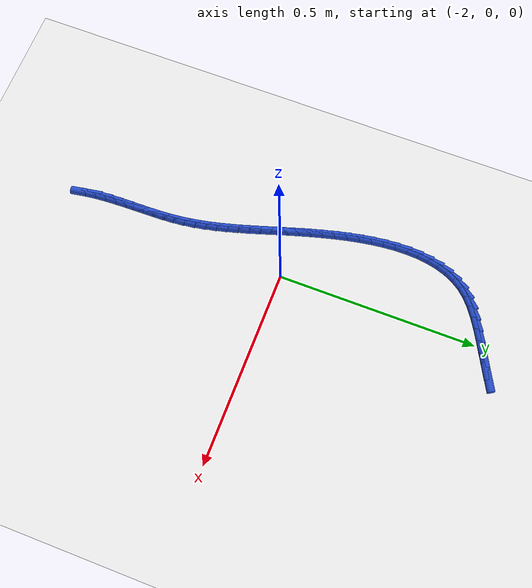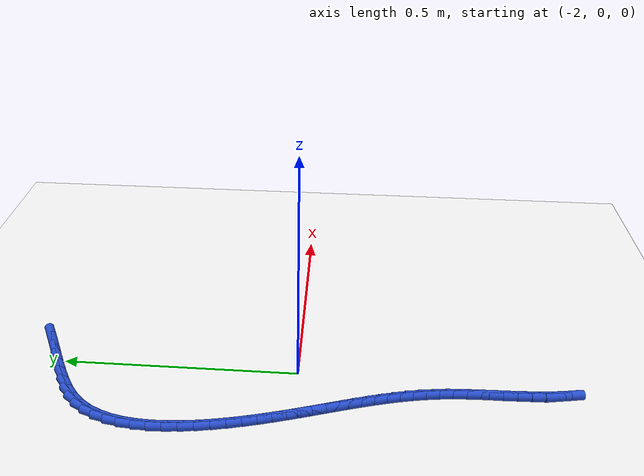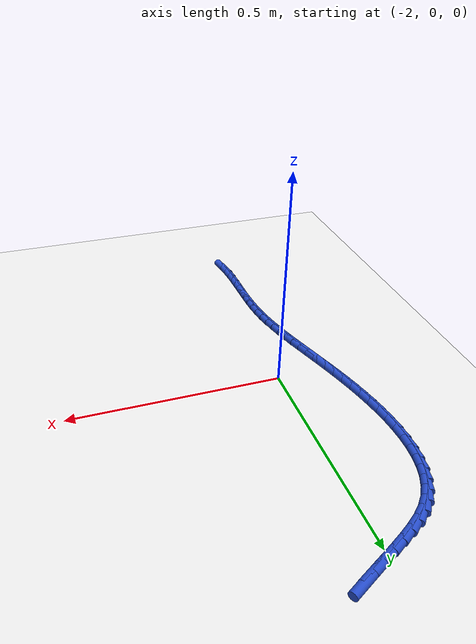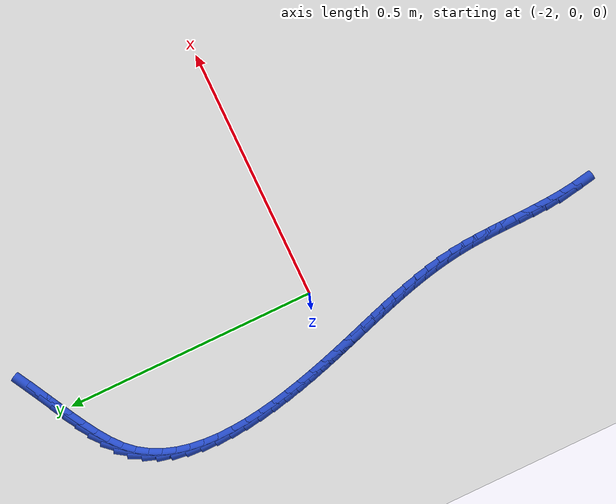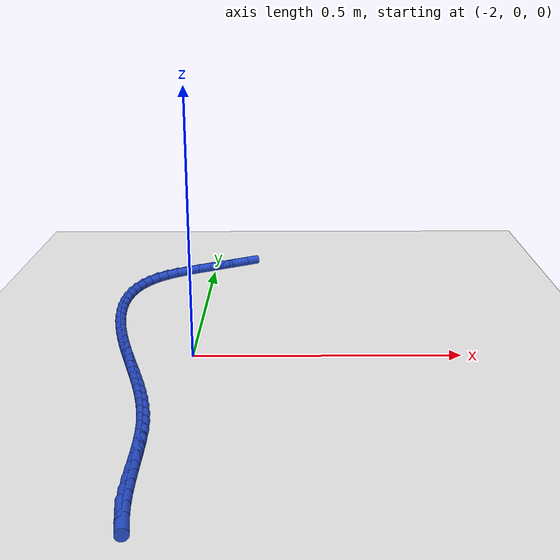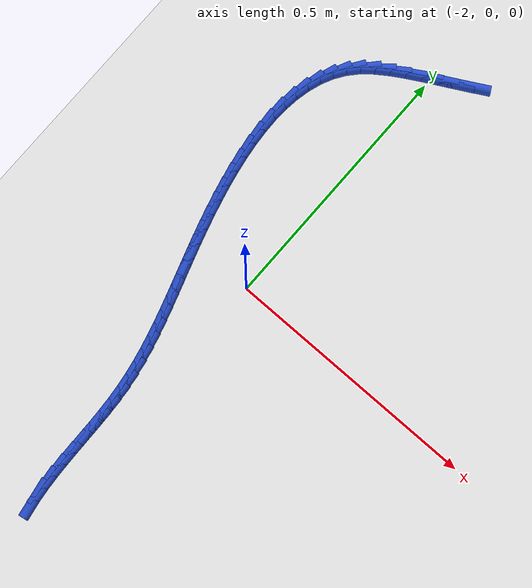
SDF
<sdf version="1.6">
 <world name="default">
  <model name="ground_plane">
   <static>1</static>
   <link name="link">
    <collision name="collision">
     <geometry><plane><normal>0 0 1</normal><size>100 100</size></plane></geometry>
     <surface><friction><ode><mu>100</mu><mu2>50</mu2></ode></friction></surface>
    </collision>
    <visual name="visual">
     <cast_shadows>0</cast_shadows>
     <geometry><plane><normal>0 0 1</normal><size>100 100</size></plane></geometry>
     <material>
      <script><uri>file://media/materials/scripts/gazebo.material</uri><name>Gazebo/WhiteGlow</name></script>
     </material>
    </visual>
   </link>
  </model>
  <model name="line">
   <link name="link_107">
    <pose>-1.9370664794864207 0.5502604682992522 0.01 0 1.57 0.5035527337162826</pose>
    <collision name="collision">
     <geometry><cylinder><radius>0.01</radius><length>0.08</length></cylinder></geometry>
    </collision>
    <visual name="visual">
     <material>
      <script><name>Gazebo/Blue</name><uri>file://media/materials/scripts/gazebo.material</uri></script>
     </material>
     <geometry><cylinder><radius>0.01</radius><length>0.08</length></cylinder></geometry>
    </visual>
   </link>
   <link name="link_108">
    <pose>-1.9632986871801936 0.5358085020147791 0.01 0 1.57 0.49392734727142784</pose>
    <collision name="collision">
     <geometry><cylinder><radius>0.01</radius><length>0.08</length></cylinder></geometry>
    </collision>
    <visual name="visual">
     <material>
      <script><name>Gazebo/Blue</name><uri>file://media/materials/scripts/gazebo.material</uri></script>
     </material>
     <geometry><cylinder><radius>0.01</radius><length>0.08</length></cylinder></geometry>
    </visual>
   </link>
   <link name="link_109">
    <pose>-1.9897419979964899 0.5215702744697214 0.01 0 1.57 0.4980053932345845</pose>
    <collision name="collision">
     <geometry><cylinder><radius>0.01</radius><length>0.08</length></cylinder></geometry>
    </collision>
    <visual name="visual">
     <material>
      <script><name>Gazebo/Blue</name><uri>file://media/materials/scripts/gazebo.material</uri></script>
     </material>
     <geometry><cylinder><radius>0.01</radius><length>0.08</length></cylinder></geometry>
    </visual>
   </link>
   <link name="link_110">
    <pose>-2.01600526164487 0.5072905331641698 0.01 0 1.57 0.516069448414545</pose>
    <collision name="collision">
     <geometry><cylinder><radius>0.01</radius><length>0.08</length></cylinder></geometry>
    </collision>
    <visual name="visual">
     <material>
      <script><name>Gazebo/Blue</name><uri>file://media/materials/scripts/gazebo.material</uri></script>
     </material>
     <geometry><cylinder><radius>0.01</radius><length>0.08</length></cylinder></geometry>
    </visual>
   </link>
   <link name="link_111">
    <pose>-2.0416973278348953 0.49271402559821675 0.01 0 1.57 0.5493014924871978</pose>
    <collision name="collision">
     <geometry><cylinder><radius>0.01</radius><length>0.08</length></cylinder></geometry>
    </collision>
    <visual name="visual">
     <material>
      <script><name>Gazebo/Blue</name><uri>file://media/materials/scripts/gazebo.material</uri></script>
     </material>
     <geometry><cylinder><radius>0.01</radius><length>0.08</length></cylinder></geometry>
    </visual>
   </link>
   <link name="link_112">
    <pose>-2.066419921079528 0.47758022489517615 0.01 0 1.57 0.6069306047628615</pose>
    <collision name="collision">
     <geometry><cylinder><radius>0.01</radius><length>0.08</length></cylinder></geometry>
    </collision>
    <visual name="visual">
     <material>
      <script><name>Gazebo/Blue</name><uri>file://media/materials/scripts/gazebo.material</uri></script>
     </material>
     <geometry><cylinder><radius>0.01</radius><length>0.08</length></cylinder></geometry>
    </visual>
   </link>
   <link name="link_113">
    <pose>-2.089590013487828 0.46149184250798997 0.01 0 1.57 0.7009840555490201</pose>
    <collision name="collision">
     <geometry><cylinder><radius>0.01</radius><length>0.08</length></cylinder></geometry>
    </collision>
    <visual name="visual">
     <material>
      <script><name>Gazebo/Blue</name><uri>file://media/materials/scripts/gazebo.material</uri></script>
     </material>
     <geometry><cylinder><radius>0.01</radius><length>0.08</length></cylinder></geometry>
    </visual>
   </link>
   <link name="link_114">
    <pose>-2.110427426190062 0.4439056502611759 0.01 0 1.57 0.8351197099322277</pose>
    <collision name="collision">
     <geometry><cylinder><radius>0.01</radius><length>0.08</length></cylinder></geometry>
    </collision>
    <visual name="visual">
     <material>
      <script><name>Gazebo/Blue</name><uri>file://media/materials/scripts/gazebo.material</uri></script>
     </material>
     <geometry><cylinder><radius>0.01</radius><length>0.08</length></cylinder></geometry>
    </visual>
   </link>
   <link name="link_115">
    <pose>-2.1281764893541313 0.4242976015184855 0.01 0 1.57 0.9842693328030023</pose>
    <collision name="collision">
     <geometry><cylinder><radius>0.01</radius><length>0.08</length></cylinder></geometry>
    </collision>
    <visual name="visual">
     <material>
      <script><name>Gazebo/Blue</name><uri>file://media/materials/scripts/gazebo.material</uri></script>
     </material>
     <geometry><cylinder><radius>0.01</radius><length>0.08</length></cylinder></geometry>
    </visual>
   </link>
   <link name="link_116">
    <pose>-2.1426218773735277 0.40256008956587047 0.01 0 1.57 1.12292958953241</pose>
    <collision name="collision">
     <geometry><cylinder><radius>0.01</radius><length>0.08</length></cylinder></geometry>
    </collision>
    <visual name="visual">
     <material>
      <script><name>Gazebo/Blue</name><uri>file://media/materials/scripts/gazebo.material</uri></script>
     </material>
     <geometry><cylinder><radius>0.01</radius><length>0.08</length></cylinder></geometry>
    </visual>
   </link>
   <link name="link_117">
    <pose>-2.1539800380464147 0.3789182727574267 0.01 0 1.57 1.2468351298220886</pose>
    <collision name="collision">
     <geometry><cylinder><radius>0.01</radius><length>0.08</length></cylinder></geometry>
    </collision>
    <visual name="visual">
     <material>
      <script><name>Gazebo/Blue</name><uri>file://media/materials/scripts/gazebo.material</uri></script>
     </material>
     <geometry><cylinder><radius>0.01</radius><length>0.08</length></cylinder></geometry>
    </visual>
   </link>
   <link name="link_118">
    <pose>-2.1624794791863526 0.3536066040258428 0.01 0 1.57 1.3547854795536423</pose>
    <collision name="collision">
     <geometry><cylinder><radius>0.01</radius><length>0.08</length></cylinder></geometry>
    </collision>
    <visual name="visual">
     <material>
      <script><name>Gazebo/Blue</name><uri>file://media/materials/scripts/gazebo.material</uri></script>
     </material>
     <geometry><cylinder><radius>0.01</radius><length>0.08</length></cylinder></geometry>
    </visual>
   </link>
   <link name="link_119">
    <pose>-2.1683487086069 0.3268595363038088 0.01 0 1.57 1.4473565848661258</pose>
    <collision name="collision">
     <geometry><cylinder><radius>0.01</radius><length>0.08</length></cylinder></geometry>
    </collision>
    <visual name="visual">
     <material>
      <script><name>Gazebo/Blue</name><uri>file://media/materials/scripts/gazebo.material</uri></script>
     </material>
     <geometry><cylinder><radius>0.01</radius><length>0.08</length></cylinder></geometry>
    </visual>
   </link>
   <link name="link_120">
    <pose>-2.171816234121616 0.29891152252401343 0.01 0 1.57 1.5260621754737729</pose>
    <collision name="collision">
     <geometry><cylinder><radius>0.01</radius><length>0.08</length></cylinder></geometry>
    </collision>
    <visual name="visual">
     <material>
      <script><name>Gazebo/Blue</name><uri>file://media/materials/scripts/gazebo.material</uri></script>
     </material>
     <geometry><cylinder><radius>0.01</radius><length>0.08</length></cylinder></geometry>
    </visual>
   </link>
   <link name="link_121">
    <pose>-2.173110563544059 0.2699970156191458 0.01 0 1.57 -1.5488627586481125</pose>
    <collision name="collision">
     <geometry><cylinder><radius>0.01</radius><length>0.08</length></cylinder></geometry>
    </collision>
    <visual name="visual">
     <material>
      <script><name>Gazebo/Blue</name><uri>file://media/materials/scripts/gazebo.material</uri></script>
     </material>
     <geometry><cylinder><radius>0.01</radius><length>0.08</length></cylinder></geometry>
    </visual>
   </link>
   <link name="link_122">
    <pose>-2.172460204687787 0.24035046852189484 0.01 0 1.57 -1.4924495677847642</pose>
    <collision name="collision">
     <geometry><cylinder><radius>0.01</radius><length>0.08</length></cylinder></geometry>
    </collision>
    <visual name="visual">
     <material>
      <script><name>Gazebo/Blue</name><uri>file://media/materials/scripts/gazebo.material</uri></script>
     </material>
     <geometry><cylinder><radius>0.01</radius><length>0.08</length></cylinder></geometry>
    </visual>
   </link>
   <link name="link_123">
    <pose>-2.17009366536636 0.21020633416494944 0.01 0 1.57 -1.4447156934558028</pose>
    <collision name="collision">
     <geometry><cylinder><radius>0.01</radius><length>0.08</length></cylinder></geometry>
    </collision>
    <visual name="visual">
     <material>
      <script><name>Gazebo/Blue</name><uri>file://media/materials/scripts/gazebo.material</uri></script>
     </material>
     <geometry><cylinder><radius>0.01</radius><length>0.08</length></cylinder></geometry>
    </visual>
   </link>
   <link name="link_124">
    <pose>-2.166239453393335 0.17979906548099944 0.01 0 1.57 -1.4043462492257475</pose>
    <collision name="collision">
     <geometry><cylinder><radius>0.01</radius><length>0.08</length></cylinder></geometry>
    </collision>
    <visual name="visual">
     <material>
      <script><name>Gazebo/Blue</name><uri>file://media/materials/scripts/gazebo.material</uri></script>
     </material>
     <geometry><cylinder><radius>0.01</radius><length>0.08</length></cylinder></geometry>
    </visual>
   </link>
   <link name="link_125">
    <pose>-2.161126076582273 0.14936311540273353 0.01 0 1.57 -1.3702856693148382</pose>
    <collision name="collision">
     <geometry><cylinder><radius>0.01</radius><length>0.08</length></cylinder></geometry>
    </collision>
    <visual name="visual">
     <material>
      <script><name>Gazebo/Blue</name><uri>file://media/materials/scripts/gazebo.material</uri></script>
     </material>
     <geometry><cylinder><radius>0.01</radius><length>0.08</length></cylinder></geometry>
    </visual>
   </link>
   <link name="link_126">
    <pose>-2.1549820427467306 0.1191329368628404 0.01 0 1.57 -1.3417174060779322</pose>
    <collision name="collision">
     <geometry><cylinder><radius>0.01</radius><length>0.08</length></cylinder></geometry>
    </collision>
    <visual name="visual">
     <material>
      <script><name>Gazebo/Blue</name><uri>file://media/materials/scripts/gazebo.material</uri></script>
     </material>
     <geometry><cylinder><radius>0.01</radius><length>0.08</length></cylinder></geometry>
    </visual>
   </link>
   <link name="link_127">
    <pose>-2.148035859700268 0.08934298279401001 0.01 0 1.57 -1.3180134386652484</pose>
    <collision name="collision">
     <geometry><cylinder><radius>0.01</radius><length>0.08</length></cylinder></geometry>
    </collision>
    <visual name="visual">
     <material>
      <script><name>Gazebo/Blue</name><uri>file://media/materials/scripts/gazebo.material</uri></script>
     </material>
     <geometry><cylinder><radius>0.01</radius><length>0.08</length></cylinder></geometry>
    </visual>
   </link>
   <link name="link_128">
    <pose>-2.140512428016204 0.060217206702786526 0.01 0 1.57 -1.2984355627484248</pose>
    <collision name="collision">
     <geometry><cylinder><radius>0.01</radius><length>0.08</length></cylinder></geometry>
    </collision>
    <visual name="visual">
     <material>
      <script><name>Gazebo/Blue</name><uri>file://media/materials/scripts/gazebo.material</uri></script>
     </material>
     <geometry><cylinder><radius>0.01</radius><length>0.08</length></cylinder></geometry>
    </visual>
   </link>
   <link name="link_129">
    <pose>-2.132577660880342 0.03180787025441378 0.01 0 1.57 -1.282840430038473</pose>
    <collision name="collision">
     <geometry><cylinder><radius>0.01</radius><length>0.08</length></cylinder></geometry>
    </collision>
    <visual name="visual">
     <material>
      <script><name>Gazebo/Blue</name><uri>file://media/materials/scripts/gazebo.material</uri></script>
     </material>
     <geometry><cylinder><radius>0.01</radius><length>0.08</length></cylinder></geometry>
    </visual>
   </link>
   <link name="link_130">
    <pose>-2.124349354485362 0.004027183223461598 0.01 0 1.57 -1.2715360645355558</pose>
    <collision name="collision">
     <geometry><cylinder><radius>0.01</radius><length>0.08</length></cylinder></geometry>
    </collision>
    <visual name="visual">
     <material>
      <script><name>Gazebo/Blue</name><uri>file://media/materials/scripts/gazebo.material</uri></script>
     </material>
     <geometry><cylinder><radius>0.01</radius><length>0.08</length></cylinder></geometry>
    </visual>
   </link>
   <link name="link_131">
    <pose>-2.1159439001773803 -0.02321673363695228 0.01 0 1.57 -1.2648034314190868</pose>
    <collision name="collision">
     <geometry><cylinder><radius>0.01</radius><length>0.08</length></cylinder></geometry>
    </collision>
    <visual name="visual">
     <material>
      <script><name>Gazebo/Blue</name><uri>file://media/materials/scripts/gazebo.material</uri></script>
     </material>
     <geometry><cylinder><radius>0.01</radius><length>0.08</length></cylinder></geometry>
    </visual>
   </link>
   <link name="link_132">
    <pose>-2.1074776893025136 -0.05001575957371016 0.01 0 1.57 -1.262883123765646</pose>
    <collision name="collision">
     <geometry><cylinder><radius>0.01</radius><length>0.08</length></cylinder></geometry>
    </collision>
    <visual name="visual">
     <material>
      <script><name>Gazebo/Blue</name><uri>file://media/materials/scripts/gazebo.material</uri></script>
     </material>
     <geometry><cylinder><radius>0.01</radius><length>0.08</length></cylinder></geometry>
    </visual>
   </link>
   <link name="link_133">
    <pose>-2.0990671132068788 -0.07646177383369515 0.01 0 1.57 -1.2659721177936594</pose>
    <collision name="collision">
     <geometry><cylinder><radius>0.01</radius><length>0.08</length></cylinder></geometry>
    </collision>
    <visual name="visual">
     <material>
      <script><name>Gazebo/Blue</name><uri>file://media/materials/scripts/gazebo.material</uri></script>
     </material>
     <geometry><cylinder><radius>0.01</radius><length>0.08</length></cylinder></geometry>
    </visual>
   </link>
   <link name="link_134">
    <pose>-2.0908285632365935 -0.10264665566378796 0.01 0 1.57 -1.274218433362361</pose>
    <collision name="collision">
     <geometry><cylinder><radius>0.01</radius><length>0.08</length></cylinder></geometry>
    </collision>
    <visual name="visual">
     <material>
      <script><name>Gazebo/Blue</name><uri>file://media/materials/scripts/gazebo.material</uri></script>
     </material>
     <geometry><cylinder><radius>0.01</radius><length>0.08</length></cylinder></geometry>
    </visual>
   </link>
   <link name="link_135">
    <pose>-2.082878430737774 -0.1286622843108717 0.01 0 1.57 -1.287712997091427</pose>
    <collision name="collision">
     <geometry><cylinder><radius>0.01</radius><length>0.08</length></cylinder></geometry>
    </collision>
    <visual name="visual">
     <material>
      <script><name>Gazebo/Blue</name><uri>file://media/materials/scripts/gazebo.material</uri></script>
     </material>
     <geometry><cylinder><radius>0.01</radius><length>0.08</length></cylinder></geometry>
    </visual>
   </link>
   <link name="link_136">
    <pose>-2.075333107056537 -0.1546005390218287 0.01 0 1.57 -1.3064784330870982</pose>
    <collision name="collision">
     <geometry><cylinder><radius>0.01</radius><length>0.08</length></cylinder></geometry>
    </collision>
    <visual name="visual">
     <material>
      <script><name>Gazebo/Blue</name><uri>file://media/materials/scripts/gazebo.material</uri></script>
     </material>
     <geometry><cylinder><radius>0.01</radius><length>0.08</length></cylinder></geometry>
    </visual>
   </link>
   <link name="link_137">
    <pose>-2.068308983539 -0.18055329904354117 0.01 0 1.57 -1.330455147366228</pose>
    <collision name="collision">
     <geometry><cylinder><radius>0.01</radius><length>0.08</length></cylinder></geometry>
    </collision>
    <visual name="visual">
     <material>
      <script><name>Gazebo/Blue</name><uri>file://media/materials/scripts/gazebo.material</uri></script>
     </material>
     <geometry><cylinder><radius>0.01</radius><length>0.08</length></cylinder></geometry>
    </visual>
   </link>
   <link name="link_138">
    <pose>-2.06192245153128 -0.20661244362289155 0.01 0 1.57 -1.3594859254945726</pose>
    <collision name="collision">
     <geometry><cylinder><radius>0.01</radius><length>0.08</length></cylinder></geometry>
    </collision>
    <visual name="visual">
     <material>
      <script><name>Gazebo/Blue</name><uri>file://media/materials/scripts/gazebo.material</uri></script>
     </material>
     <geometry><cylinder><radius>0.01</radius><length>0.08</length></cylinder></geometry>
    </visual>
   </link>
   <link name="link_139">
    <pose>-2.0562899023794934 -0.23286985200676208 0.01 0 1.57 -1.393301252470117</pose>
    <collision name="collision">
     <geometry><cylinder><radius>0.01</radius><length>0.08</length></cylinder></geometry>
    </collision>
    <visual name="visual">
     <material>
      <script><name>Gazebo/Blue</name><uri>file://media/materials/scripts/gazebo.material</uri></script>
     </material>
     <geometry><cylinder><radius>0.01</radius><length>0.08</length></cylinder></geometry>
    </visual>
   </link>
   <link name="link_140">
    <pose>-2.0515277274297565 -0.2594174034420357 0.01 0 1.57 -1.431508490285561</pose>
    <collision name="collision">
     <geometry><cylinder><radius>0.01</radius><length>0.08</length></cylinder></geometry>
    </collision>
    <visual name="visual">
     <material>
      <script><name>Gazebo/Blue</name><uri>file://media/materials/scripts/gazebo.material</uri></script>
     </material>
     <geometry><cylinder><radius>0.01</radius><length>0.08</length></cylinder></geometry>
    </visual>
   </link>
   <link name="link_141">
    <pose>-2.0477523180281874 -0.2863469771755934 0.01 0 1.57 -1.472904188831892</pose>
    <collision name="collision">
     <geometry><cylinder><radius>0.01</radius><length>0.08</length></cylinder></geometry>
    </collision>
    <visual name="visual">
     <material>
      <script><name>Gazebo/Blue</name><uri>file://media/materials/scripts/gazebo.material</uri></script>
     </material>
     <geometry><cylinder><radius>0.01</radius><length>0.08</length></cylinder></geometry>
    </visual>
   </link>
   <link name="link_142">
    <pose>-2.0450620737525442 -0.3137408559431882 0.01 0 1.57 -1.508470708820102</pose>
    <collision name="collision">
     <geometry><cylinder><radius>0.01</radius><length>0.08</length></cylinder></geometry>
    </collision>
    <visual name="visual">
     <material>
      <script><name>Gazebo/Blue</name><uri>file://media/materials/scripts/gazebo.material</uri></script>
     </material>
     <geometry><cylinder><radius>0.01</radius><length>0.08</length></cylinder></geometry>
    </visual>
   </link>
   <link name="link_143">
    <pose>-2.0433260428946283 -0.3415589903048467 0.01 0 1.57 -1.5327277349012411</pose>
    <collision name="collision">
     <geometry><cylinder><radius>0.01</radius><length>0.08</length></cylinder></geometry>
    </collision>
    <visual name="visual">
     <material>
      <script><name>Gazebo/Blue</name><uri>file://media/materials/scripts/gazebo.material</uri></script>
     </material>
     <geometry><cylinder><radius>0.01</radius><length>0.08</length></cylinder></geometry>
    </visual>
   </link>
   <link name="link_144">
    <pose>-2.0422551135833356 -0.36967697081031614 0.01 0 1.57 -1.546127216380801</pose>
    <collision name="collision">
     <geometry><cylinder><radius>0.01</radius><length>0.08</length></cylinder></geometry>
    </collision>
    <visual name="visual">
     <material>
      <script><name>Gazebo/Blue</name><uri>file://media/materials/scripts/gazebo.material</uri></script>
     </material>
     <geometry><cylinder><radius>0.01</radius><length>0.08</length></cylinder></geometry>
    </visual>
   </link>
   <link name="link_145">
    <pose>-2.0415570397766687 -0.39796871629451963 0.01 0 1.57 -1.5490116021659763</pose>
    <collision name="collision">
     <geometry><cylinder><radius>0.01</radius><length>0.08</length></cylinder></geometry>
    </collision>
    <visual name="visual">
     <material>
      <script><name>Gazebo/Blue</name><uri>file://media/materials/scripts/gazebo.material</uri></script>
     </material>
     <geometry><cylinder><radius>0.01</radius><length>0.08</length></cylinder></geometry>
    </visual>
   </link>
   <link name="link_146">
    <pose>-2.040939575432629 -0.42630814559237973 0.01 0 1.57 -1.5414674903311103</pose>
    <collision name="collision">
     <geometry><cylinder><radius>0.01</radius><length>0.08</length></cylinder></geometry>
    </collision>
    <visual name="visual">
     <material>
      <script><name>Gazebo/Blue</name><uri>file://media/materials/scripts/gazebo.material</uri></script>
     </material>
     <geometry><cylinder><radius>0.01</radius><length>0.08</length></cylinder></geometry>
    </visual>
   </link>
   <link name="link_147">
    <pose>-2.040110474509217 -0.45456917753881926 0.01 0 1.57 -1.5233214314088204</pose>
    <collision name="collision">
     <geometry><cylinder><radius>0.01</radius><length>0.08</length></cylinder></geometry>
    </collision>
    <visual name="visual">
     <material>
      <script><name>Gazebo/Blue</name><uri>file://media/materials/scripts/gazebo.material</uri></script>
     </material>
     <geometry><cylinder><radius>0.01</radius><length>0.08</length></cylinder></geometry>
    </visual>
   </link>
   <link name="link_148">
    <pose>-2.038777490964435 -0.48262573096876066 0.01 0 1.57 -1.4941555424324549</pose>
    <collision name="collision">
     <geometry><cylinder><radius>0.01</radius><length>0.08</length></cylinder></geometry>
    </collision>
    <visual name="visual">
     <material>
      <script><name>Gazebo/Blue</name><uri>file://media/materials/scripts/gazebo.material</uri></script>
     </material>
     <geometry><cylinder><radius>0.01</radius><length>0.08</length></cylinder></geometry>
    </visual>
   </link>
   <link name="link_149">
    <pose>-2.0366483787562837 -0.5103517247171276 0.01 0 1.57 -1.4533502056192031</pose>
    <collision name="collision">
     <geometry><cylinder><radius>0.01</radius><length>0.08</length></cylinder></geometry>
    </collision>
    <visual name="visual">
     <material>
      <script><name>Gazebo/Blue</name><uri>file://media/materials/scripts/gazebo.material</uri></script>
     </material>
     <geometry><cylinder><radius>0.01</radius><length>0.08</length></cylinder></geometry>
    </visual>
   </link>
   <link name="link_150">
    <pose>-2.0334308918427655 -0.5376210776188413 0.01 0 1.57 -1.4001715833467658</pose>
    <collision name="collision">
     <geometry><cylinder><radius>0.01</radius><length>0.08</length></cylinder></geometry>
    </collision>
    <visual name="visual">
     <material>
      <script><name>Gazebo/Blue</name><uri>file://media/materials/scripts/gazebo.material</uri></script>
     </material>
     <geometry><cylinder><radius>0.01</radius><length>0.08</length></cylinder></geometry>
    </visual>
   </link>
  </model>
 </world>
</sdf>
